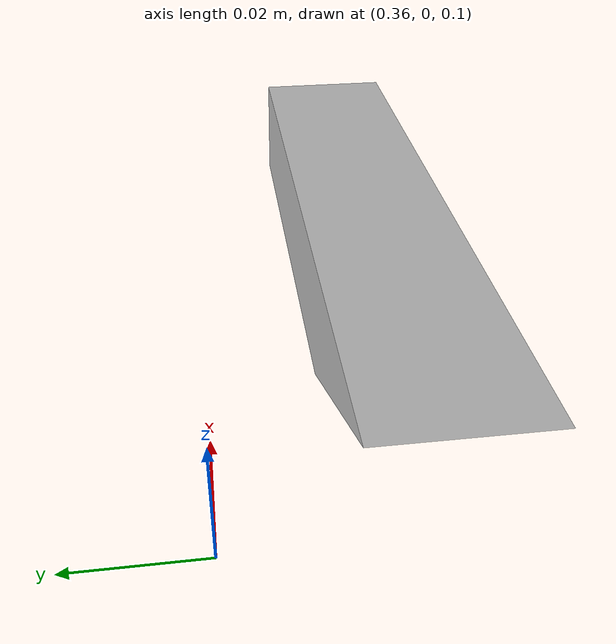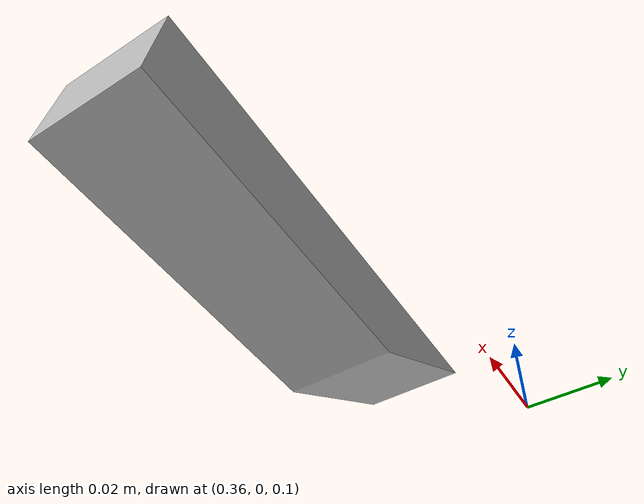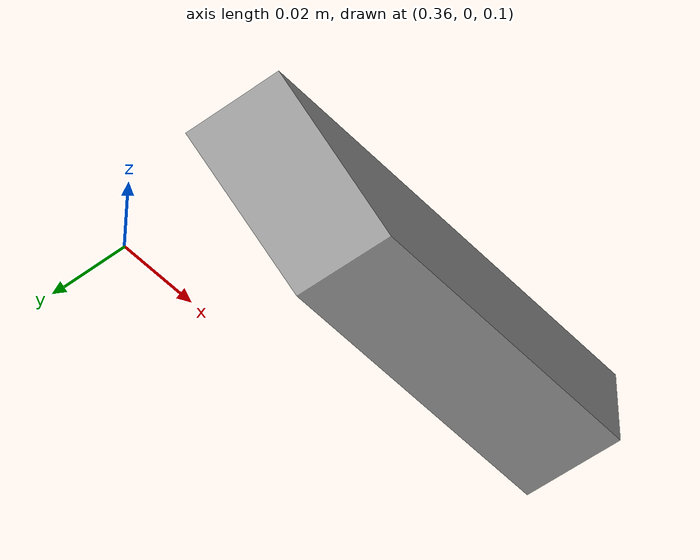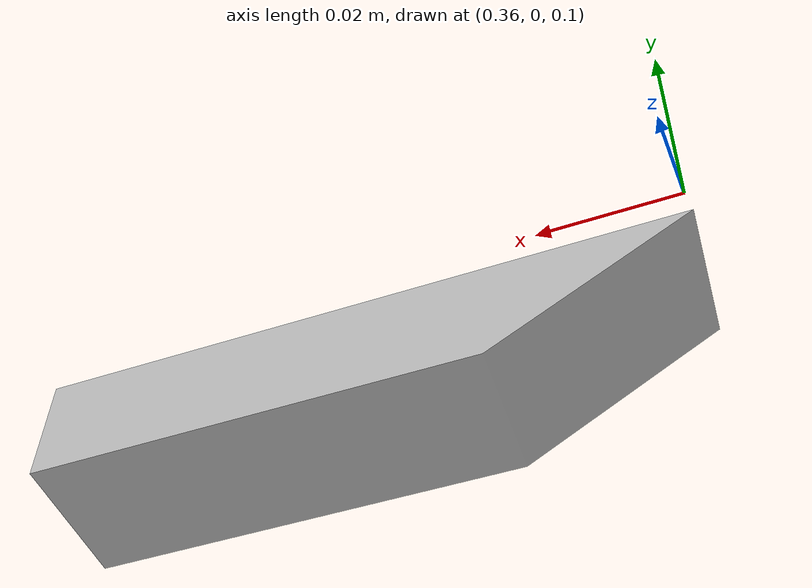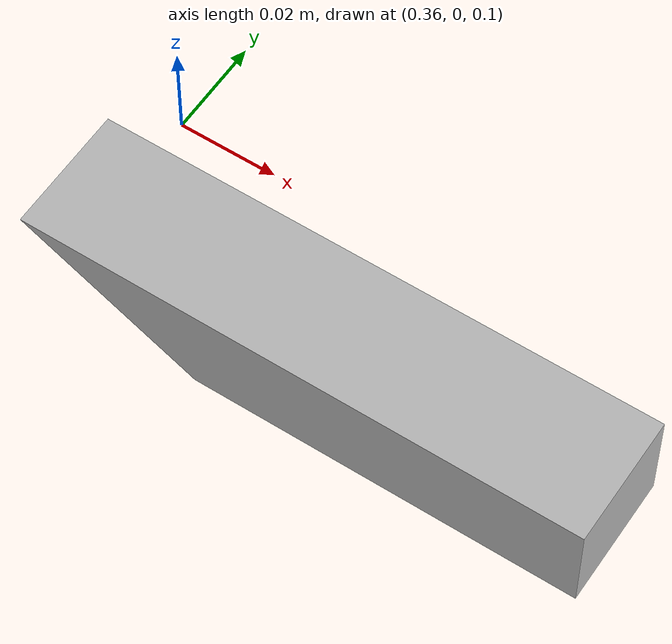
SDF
<?xml version='1.0'?>
<sdf version='1.6'>
<model name="pancake_left">
<static>false</static>
<pose> 0 0 0 0 0 0 </pose>

<link name='tool'>
	<pose>0.43 -0.03 0.1 0 0 0</pose>
	<inertial>
		<mass>0.5</mass>
	</inertial>
	<collision name='pancake_collision'>
		<geometry>
			<mesh><uri>model://pancake_right/pancake.dae</uri></mesh>
		</geometry>
	</collision>
	<visual name='tool_visual'>
		<geometry>
			<mesh><uri>model://pancake_right/pancake.dae</uri></mesh>
		</geometry>
	</visual>
</link>

</model>
</sdf>
